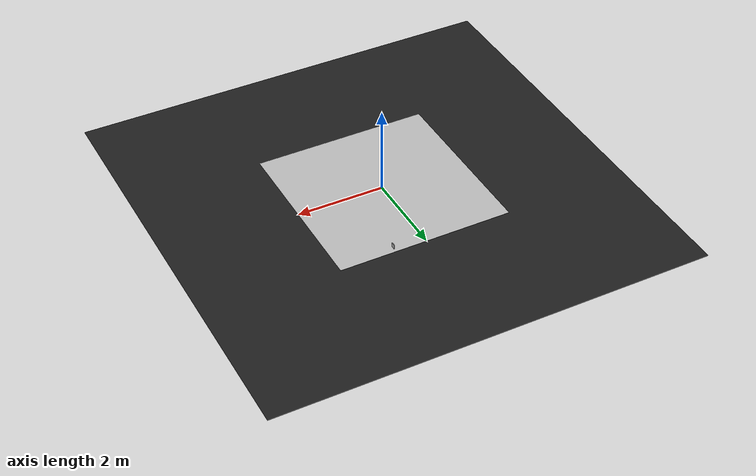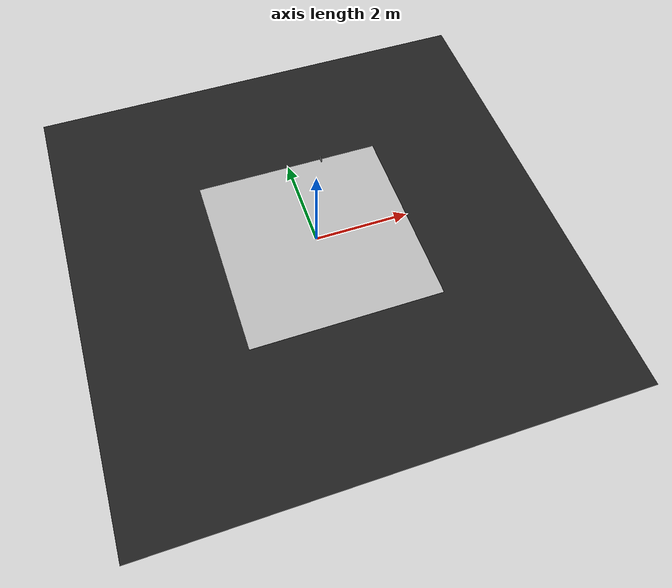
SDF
<sdf version="1.6">
 <world name="default">
  <include><uri>model://traffic_parking</uri><pose>0.74 1.92 0.10 0 0 -1.57</pose></include>
  <scene>
   <ambient>0 0 0 1</ambient>
   <shadows>0</shadows>
   <grid>0</grid>
   <background>0.7 0.7 0.7 1</background>
  </scene>
  <model name="course">
   <static>1</static>
   <link name="course_link">
    <collision name="course_collision">
     <geometry><plane><normal>0 0 1</normal><size>4 4</size></plane></geometry>
     <surface><friction><ode><mu>100</mu><mu2>50</mu2></ode></friction></surface>
    </collision>
    <visual name="course_visual">
     <cast_shadows>0</cast_shadows>
     <geometry><plane><normal>0 0 1</normal><size>4 4</size></plane></geometry>
     <material>
      <script>
       <uri>model://course/materials/scripts</uri>
       <uri>model://course/materials/textures</uri>
       <name>course</name>
      </script>
     </material>
    </visual>
   </link>
   <pose>0 0 0 0 0 -3.14</pose>
  </model>
  <light name="sun" type="directional">
   <pose>0 0 10 0 -0 0</pose>
   <diffuse>0.8 0.8 0.8 1</diffuse>
   <specular>0.1 0.1 0.1 1</specular>
   <attenuation>
    <range>1000</range>
    <constant>0.9</constant>
    <linear>0.01</linear>
    <quadratic>0.001</quadratic>
   </attenuation>
   <direction>-0.5 0.5 -1</direction>
  </light>
  <model name="ground2">
   <pose>0 0 -0.1 0 -0 0</pose>
   <static>1</static>
   <link name="ground">
    <collision name="ground_coll"><geometry><box><size>8 8 0.01</size></box></geometry></collision>
    <visual name="ground_vis">
     <geometry><box><size>10 10 0.01</size></box></geometry>
     <material>
      <script><uri>file://media/materials/scripts/gazebo.material</uri><name>Gazebo/FlatBlack</name></script>
     </material>
    </visual>
   </link>
  </model>
  <gravity>0 0 -9.8</gravity>
  <magnetic_field>6e-06 2.3e-05 -4.2e-05</magnetic_field>
  <atmosphere type="adiabatic"/>
  <physics name="default_physics" default="0" type="ode">
   <max_step_size>0.001</max_step_size>
   <real_time_factor>1</real_time_factor>
   <real_time_update_rate>1000</real_time_update_rate>
  </physics>
  <spherical_coordinates>
   <surface_model>EARTH_WGS84</surface_model>
   <latitude_deg>0</latitude_deg>
   <longitude_deg>0</longitude_deg>
   <elevation>0</elevation>
   <heading_deg>0</heading_deg>
  </spherical_coordinates>
  <light name="user_point_light_1" type="point">
   <pose>-1.64815 0.604519 1 0 -0 0</pose>
   <diffuse>0.5 0.5 0.5 1</diffuse>
   <specular>0.1 0.1 0.1 1</specular>
   <attenuation>
    <range>20</range>
    <constant>0.5</constant>
    <linear>0.01</linear>
    <quadratic>0.001</quadratic>
   </attenuation>
   <cast_shadows>0</cast_shadows>
   <direction>0 0 -1</direction>
  </light>
  <light name="user_point_light_2" type="point">
   <pose>1.63854 1.69565 1 0 -0 0</pose>
   <diffuse>0.5 0.5 0.5 1</diffuse>
   <specular>0.1 0.1 0.1 1</specular>
   <attenuation>
    <range>20</range>
    <constant>0.5</constant>
    <linear>0.01</linear>
    <quadratic>0.001</quadratic>
   </attenuation>
   <cast_shadows>0</cast_shadows>
   <direction>0 0 -1</direction>
  </light>
  <light name="user_point_light_3" type="point">
   <pose>0.42 -3.31 1 0 -0 0</pose>
   <diffuse>0.5 0.5 0.5 1</diffuse>
   <specular>0.1 0.1 0.1 1</specular>
   <attenuation>
    <range>20</range>
    <constant>0.5</constant>
    <linear>0.01</linear>
    <quadratic>0.001</quadratic>
   </attenuation>
   <cast_shadows>0</cast_shadows>
   <direction>0 0 -1</direction>
  </light>
  <audio><device>default</device></audio>
 </world>
</sdf>

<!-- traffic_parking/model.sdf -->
<sdf version="1.6">
  <model name="traffic_parking">
    <static>true</static>
    <link name="box">
     <visual name="front_visual">
     <pose>0 0.0025 0 0 0 0 </pose>
       <geometry>
         <box>
           <size>0.10 0.010 0.10 </size>
         </box>
       </geometry>
        <material>
          <script>
            <uri>model://traffic_parking/materials/scripts</uri>
            <uri>model://traffic_parking/materials/textures</uri>
            <name>traffic_parking</name>
          </script>
        </material>
     </visual>

     <visual name="rear_visual">
       <pose>0 -0.0025 0 0 0 0 </pose>
         <geometry>
           <box>
             <size>0.10 0.010 0.10</size>
           </box>
         </geometry>
     </visual>
    </link>
  </model>
</sdf>
